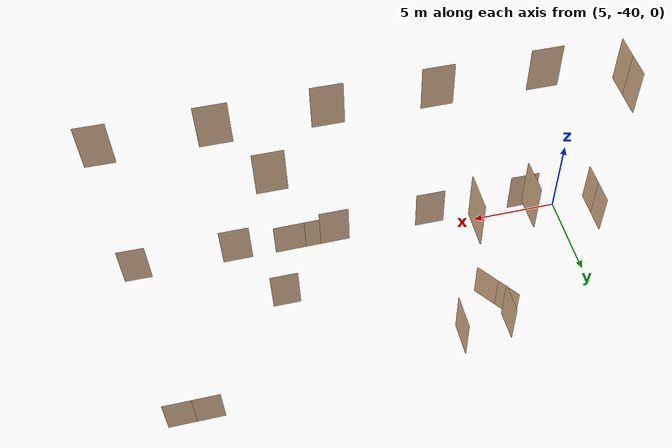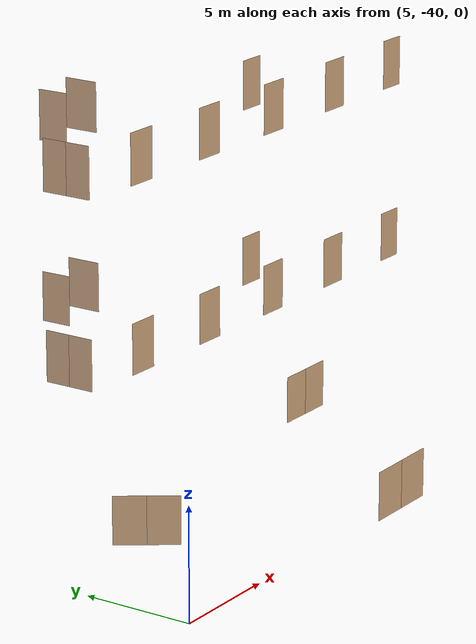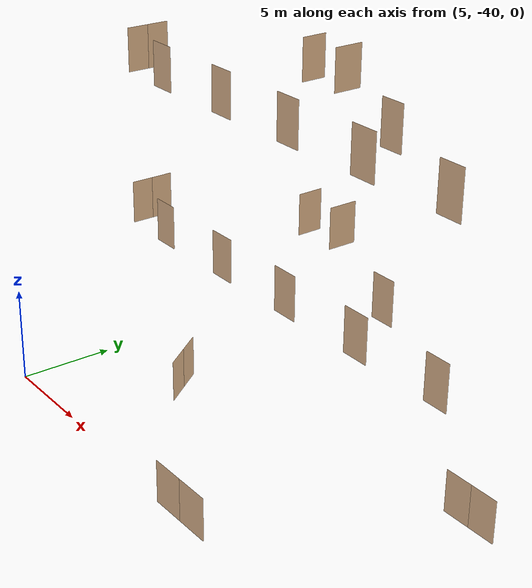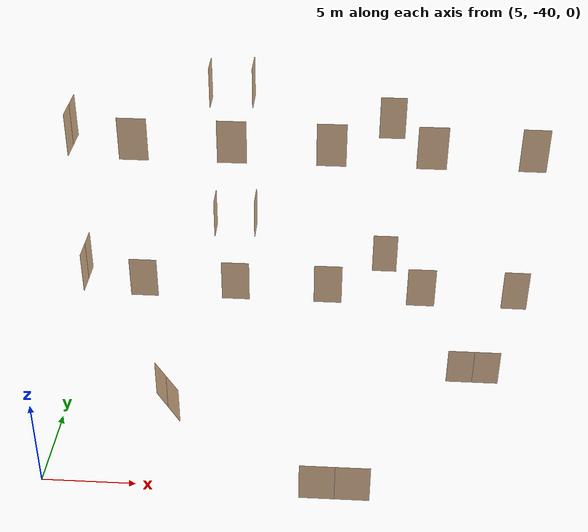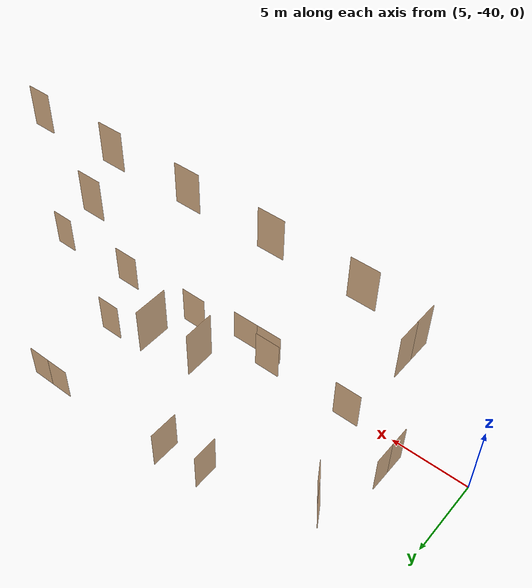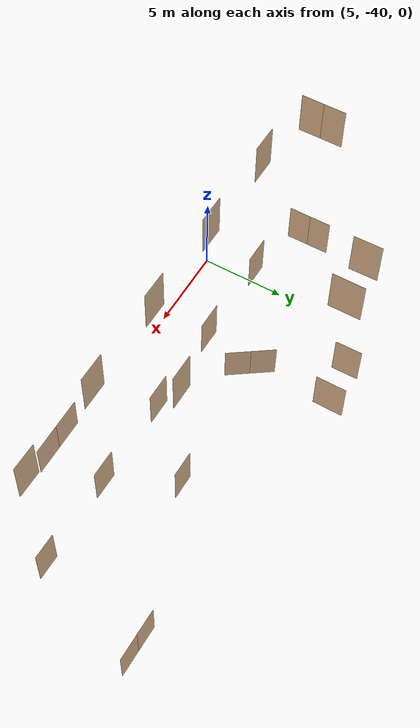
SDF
<sdf version="1.7">
 <world name="world">
  <include><uri>model://sun</uri></include>
  <model name="L1_door1">
   <pose>10.753654762321071 -33.79999264551465 0.0 0 0 2.1904910296829736</pose>
   <link name="right">
    <pose>0.7204413525969184 0 1.11 0 0 0</pose>
    <visual name="right_visual">
     <geometry><box><size>1.4308827051938369 0.03 2.2</size></box></geometry>
     <material><ambient>0.5 0.25 0 0.6</ambient><diffuse>0.5 0.25 0 0.6</diffuse></material>
    </visual>
    <collision name="right_collision">
     <geometry><box><size>1.4308827051938369 0.03 2.2</size></box></geometry>
     <surface><contact><collide_bitmask>0x02</collide_bitmask></contact></surface>
    </collision>
    <inertial>
     <mass>50.0</mass>
     <inertia><ixx>20.17041666666667</ixx><iyy>28.69760548342847</iyy><izz>8.534688816761804</izz></inertia>
    </inertial>
   </link>
   <joint name="right_joint" type="revolute">
    <parent>world</parent>
    <child>right</child>
    <axis><xyz>0 0 1</xyz><limit><lower>0</lower><upper>1.57</upper></limit></axis>
    <pose>0.7204413525969184 0 0 0 0 0</pose>
   </joint>
   <link name="left">
    <pose>-0.7204413525969184 0 1.11 0 0 0</pose>
    <visual name="left_visual">
     <geometry><box><size>1.4308827051938369 0.03 2.2</size></box></geometry>
     <material><ambient>0.5 0.25 0 0.6</ambient><diffuse>0.5 0.25 0 0.6</diffuse></material>
    </visual>
    <collision name="left_collision">
     <geometry><box><size>1.4308827051938369 0.03 2.2</size></box></geometry>
     <surface><contact><collide_bitmask>0x02</collide_bitmask></contact></surface>
    </collision>
    <inertial>
     <mass>50.0</mass>
     <inertia><ixx>20.17041666666667</ixx><iyy>28.69760548342847</iyy><izz>8.534688816761804</izz></inertia>
    </inertial>
   </link>
   <joint name="left_joint" type="revolute">
    <parent>world</parent>
    <child>left</child>
    <axis><xyz>0 0 1</xyz><limit><lower>-1.57</lower><upper>0</upper></limit></axis>
    <pose>-0.7204413525969184 0 0 0 0 0</pose>
   </joint>
  </model>
  <model name="L1_door3">
   <pose>20.334155710474544 -40.40725483879361 0.0 0 0 -3.137402798278724</pose>
   <link name="right">
    <pose>0.9069965354571369 0 1.11 0 0 0</pose>
    <visual name="right_visual">
     <geometry><box><size>1.8039930709142737 0.03 2.2</size></box></geometry>
     <material><ambient>0.5 0.25 0 0.6</ambient><diffuse>0.5 0.25 0 0.6</diffuse></material>
    </visual>
    <collision name="right_collision">
     <geometry><box><size>1.8039930709142737 0.03 2.2</size></box></geometry>
     <surface><contact><collide_bitmask>0x02</collide_bitmask></contact></surface>
    </collision>
    <inertial>
     <mass>50.0</mass>
     <inertia><ixx>20.17041666666667</ixx><iyy>33.726629166277974</iyy><izz>13.563712499611302</izz></inertia>
    </inertial>
   </link>
   <joint name="right_joint" type="prismatic">
    <parent>world</parent>
    <child>right</child>
    <axis>
     <xyz>1 0 0</xyz>
     <limit>
      <lower>0.0</lower>
      <upper>1.4748171583800687</upper>
      <effort>500.0</effort>
      <velocity>0.8</velocity>
     </limit>
     <dynamics damping="60.0" friction="50.0"/>
    </axis>
   </joint>
   <link name="left">
    <pose>-0.9069965354571369 0 1.11 0 0 0</pose>
    <visual name="left_visual">
     <geometry><box><size>1.8039930709142737 0.03 2.2</size></box></geometry>
     <material><ambient>0.5 0.25 0 0.6</ambient><diffuse>0.5 0.25 0 0.6</diffuse></material>
    </visual>
    <collision name="left_collision">
     <geometry><box><size>1.8039930709142737 0.03 2.2</size></box></geometry>
     <surface><contact><collide_bitmask>0x02</collide_bitmask></contact></surface>
    </collision>
    <inertial>
     <mass>50.0</mass>
     <inertia><ixx>20.17041666666667</ixx><iyy>33.726629166277974</iyy><izz>13.563712499611302</izz></inertia>
    </inertial>
   </link>
   <joint name="left_joint" type="prismatic">
    <parent>world</parent>
    <child>left</child>
    <axis>
     <xyz>1 0 0</xyz>
     <limit>
      <lower>-1.4748171583800687</lower>
      <upper>0</upper>
      <effort>500.0</effort>
      <velocity>0.8</velocity>
     </limit>
     <dynamics damping="60.0" friction="50.0"/>
    </axis>
   </joint>
   <plugin name="sliding_door" filename="libsliding_door_plugin.so">
    <ros><namespace>/doors/L1_door3</namespace></ros>
    <right_joint>right_joint</right_joint>
    <left_joint>left_joint</left_joint>
    <open_distance>1.3</open_distance>
    <kp>100.0</kp>
    <kd>120.0</kd>
   </plugin>
  </model>
  <model name="L1_door5">
   <pose>28.079493196697264 -30.43738230505557 0.0 0 0 -0.0023958500301941633</pose>
   <link name="right">
    <pose>0.7494993011996198 0 1.11 0 0 0</pose>
    <visual name="right_visual">
     <geometry><box><size>1.4889986023992396 0.03 2.2</size></box></geometry>
     <material><ambient>0.5 0.25 0 0.6</ambient><diffuse>0.5 0.25 0 0.6</diffuse></material>
    </visual>
    <collision name="right_collision">
     <geometry><box><size>1.4889986023992396 0.03 2.2</size></box></geometry>
     <surface><contact><collide_bitmask>0x02</collide_bitmask></contact></surface>
    </collision>
    <inertial>
     <mass>50.0</mass>
     <inertia><ixx>20.17041666666667</ixx><iyy>29.404653491445373</iyy><izz>9.241736824778705</izz></inertia>
    </inertial>
   </link>
   <joint name="right_joint" type="prismatic">
    <parent>world</parent>
    <child>right</child>
    <axis>
     <xyz>1 0 0</xyz>
     <limit>
      <lower>0.0</lower>
      <upper>1.4748171583800687</upper>
      <effort>500.0</effort>
      <velocity>0.8</velocity>
     </limit>
     <dynamics damping="60.0" friction="50.0"/>
    </axis>
   </joint>
   <link name="left">
    <pose>-0.7494993011996198 0 1.11 0 0 0</pose>
    <visual name="left_visual">
     <geometry><box><size>1.4889986023992396 0.03 2.2</size></box></geometry>
     <material><ambient>0.5 0.25 0 0.6</ambient><diffuse>0.5 0.25 0 0.6</diffuse></material>
    </visual>
    <collision name="left_collision">
     <geometry><box><size>1.4889986023992396 0.03 2.2</size></box></geometry>
     <surface><contact><collide_bitmask>0x02</collide_bitmask></contact></surface>
    </collision>
    <inertial>
     <mass>50.0</mass>
     <inertia><ixx>20.17041666666667</ixx><iyy>29.404653491445373</iyy><izz>9.241736824778705</izz></inertia>
    </inertial>
   </link>
   <joint name="left_joint" type="prismatic">
    <parent>world</parent>
    <child>left</child>
    <axis>
     <xyz>1 0 0</xyz>
     <limit>
      <lower>-1.4748171583800687</lower>
      <upper>0</upper>
      <effort>500.0</effort>
      <velocity>0.8</velocity>
     </limit>
     <dynamics damping="60.0" friction="50.0"/>
    </axis>
   </joint>
   <plugin name="sliding_door" filename="libsliding_door_plugin.so">
    <ros><namespace>/doors/L1_door5</namespace></ros>
    <right_joint>right_joint</right_joint>
    <left_joint>left_joint</left_joint>
    <open_distance>1.3</open_distance>
    <kp>100.0</kp>
    <kd>120.0</kd>
   </plugin>
  </model>
  <model name="L2_door2">
   <pose>6.76857286388343 -32.90682600516501 8.0 0 0 1.571612558028263</pose>
   <link name="right">
    <pose>0.5675078680191911 0 1.11 0 0 0</pose>
    <visual name="right_visual">
     <geometry><box><size>1.1250157360383821 0.03 2.2</size></box></geometry>
     <material><ambient>0.5 0.25 0 0.6</ambient><diffuse>0.5 0.25 0 0.6</diffuse></material>
    </visual>
    <collision name="right_collision">
     <geometry><box><size>1.1250157360383821 0.03 2.2</size></box></geometry>
     <surface><contact><collide_bitmask>0x02</collide_bitmask></contact></surface>
    </collision>
    <inertial>
     <mass>50.0</mass>
     <inertia><ixx>20.17041666666667</ixx><iyy>25.44025169305827</iyy><izz>5.277335026391595</izz></inertia>
    </inertial>
   </link>
   <joint name="right_joint" type="revolute">
    <parent>world</parent>
    <child>right</child>
    <axis><xyz>0 0 -1</xyz><limit><lower>0</lower><upper>1.57</upper></limit></axis>
    <pose>0.5675078680191911 0 0 0 0 0</pose>
   </joint>
   <link name="left">
    <pose>-0.5675078680191911 0 1.11 0 0 0</pose>
    <visual name="left_visual">
     <geometry><box><size>1.1250157360383821 0.03 2.2</size></box></geometry>
     <material><ambient>0.5 0.25 0 0.6</ambient><diffuse>0.5 0.25 0 0.6</diffuse></material>
    </visual>
    <collision name="left_collision">
     <geometry><box><size>1.1250157360383821 0.03 2.2</size></box></geometry>
     <surface><contact><collide_bitmask>0x02</collide_bitmask></contact></surface>
    </collision>
    <inertial>
     <mass>50.0</mass>
     <inertia><ixx>20.17041666666667</ixx><iyy>25.44025169305827</iyy><izz>5.277335026391595</izz></inertia>
    </inertial>
   </link>
   <joint name="left_joint" type="revolute">
    <parent>world</parent>
    <child>left</child>
    <axis><xyz>0 0 -1</xyz><limit><lower>-1.57</lower><upper>0</upper></limit></axis>
    <pose>-0.5675078680191911 0 0 0 0 0</pose>
   </joint>
  </model>
  <model name="L2_door3">
   <pose>10.044220258 -34.21478433126707 8.0 0 0 3.1365461417546308</pose>
   <link name="right">
    <pose>0 0 1.11 0 0 0</pose>
    <visual name="right_visual">
     <geometry><box><size>1.4278667928054123 0.03 2.2</size></box></geometry>
     <material><ambient>0.5 0.25 0 0.6</ambient><diffuse>0.5 0.25 0 0.6</diffuse></material>
    </visual>
    <collision name="right_collision">
     <geometry><box><size>1.4278667928054123 0.03 2.2</size></box></geometry>
     <surface><contact><collide_bitmask>0x02</collide_bitmask></contact></surface>
    </collision>
    <inertial>
     <mass>50.0</mass>
     <inertia><ixx>20.17041666666667</ixx><iyy>28.661681574985064</iyy><izz>8.498764908318392</izz></inertia>
    </inertial>
   </link>
   <joint name="right_joint" type="revolute">
    <parent>world</parent>
    <child>right</child>
    <axis><xyz>0 0 -1</xyz><limit><lower>0</lower><upper>1.57</upper></limit></axis>
    <pose>0.7189333964027061 0 0 0 0 0</pose>
   </joint>
  </model>
  <model name="L2_door4">
   <pose>19.62055855578882 -34.21478433126707 8.0 0 0 3.1365461417546308</pose>
   <link name="right">
    <pose>0 0 1.11 0 0 0</pose>
    <visual name="right_visual">
     <geometry><box><size>1.4278667928054123 0.03 2.2</size></box></geometry>
     <material><ambient>0.5 0.25 0 0.6</ambient><diffuse>0.5 0.25 0 0.6</diffuse></material>
    </visual>
    <collision name="right_collision">
     <geometry><box><size>1.4278667928054123 0.03 2.2</size></box></geometry>
     <surface><contact><collide_bitmask>0x02</collide_bitmask></contact></surface>
    </collision>
    <inertial>
     <mass>50.0</mass>
     <inertia><ixx>20.17041666666667</ixx><iyy>28.661681574985064</iyy><izz>8.498764908318392</izz></inertia>
    </inertial>
   </link>
   <joint name="right_joint" type="revolute">
    <parent>world</parent>
    <child>right</child>
    <axis><xyz>0 0 -1</xyz><limit><lower>0</lower><upper>1.57</upper></limit></axis>
    <pose>0.7189333964027061 0 0 0 0 0</pose>
   </joint>
  </model>
  <model name="L2_door5">
   <pose>14.832389407 -34.21478433126707 8.0 0 0 3.1365461417546308</pose>
   <link name="right">
    <pose>0 0 1.11 0 0 0</pose>
    <visual name="right_visual">
     <geometry><box><size>1.4278667928054123 0.03 2.2</size></box></geometry>
     <material><ambient>0.5 0.25 0 0.6</ambient><diffuse>0.5 0.25 0 0.6</diffuse></material>
    </visual>
    <collision name="right_collision">
     <geometry><box><size>1.4278667928054123 0.03 2.2</size></box></geometry>
     <surface><contact><collide_bitmask>0x02</collide_bitmask></contact></surface>
    </collision>
    <inertial>
     <mass>50.0</mass>
     <inertia><ixx>20.17041666666667</ixx><iyy>28.661681574985064</iyy><izz>8.498764908318392</izz></inertia>
    </inertial>
   </link>
   <joint name="right_joint" type="revolute">
    <parent>world</parent>
    <child>right</child>
    <axis><xyz>0 0 -1</xyz><limit><lower>0</lower><upper>1.57</upper></limit></axis>
    <pose>0.7189333964027061 0 0 0 0 0</pose>
   </joint>
  </model>
  <model name="L2_door6">
   <pose>24.408727706 -34.21478433126707 8.0 0 0 3.1365461417546308</pose>
   <link name="right">
    <pose>0 0 1.11 0 0 0</pose>
    <visual name="right_visual">
     <geometry><box><size>1.4278667928054123 0.03 2.2</size></box></geometry>
     <material><ambient>0.5 0.25 0 0.6</ambient><diffuse>0.5 0.25 0 0.6</diffuse></material>
    </visual>
    <collision name="right_collision">
     <geometry><box><size>1.4278667928054123 0.03 2.2</size></box></geometry>
     <surface><contact><collide_bitmask>0x02</collide_bitmask></contact></surface>
    </collision>
    <inertial>
     <mass>50.0</mass>
     <inertia><ixx>20.17041666666667</ixx><iyy>28.661681574985064</iyy><izz>8.498764908318392</izz></inertia>
    </inertial>
   </link>
   <joint name="right_joint" type="revolute">
    <parent>world</parent>
    <child>right</child>
    <axis><xyz>0 0 -1</xyz><limit><lower>0</lower><upper>1.57</upper></limit></axis>
    <pose>0.7189333964027061 0 0 0 0 0</pose>
   </joint>
  </model>
  <model name="L2_door7">
   <pose>13.018848337594756 -27.49809116 8.0 0 0 1.5874688733681936</pose>
   <link name="right">
    <pose>0 0 1.11 0 0 0</pose>
    <visual name="right_visual">
     <geometry><box><size>1.382945881897145 0.03 2.2</size></box></geometry>
     <material><ambient>0.5 0.25 0 0.6</ambient><diffuse>0.5 0.25 0 0.6</diffuse></material>
    </visual>
    <collision name="right_collision">
     <geometry><box><size>1.382945881897145 0.03 2.2</size></box></geometry>
     <surface><contact><collide_bitmask>0x02</collide_bitmask></contact></surface>
    </collision>
    <inertial>
     <mass>50.0</mass>
     <inertia><ixx>20.17041666666667</ixx><iyy>28.13558046773447</iyy><izz>7.9726638010677995</izz></inertia>
    </inertial>
   </link>
   <joint name="right_joint" type="revolute">
    <parent>world</parent>
    <child>right</child>
    <axis><xyz>0 0 -1</xyz><limit><lower>0</lower><upper>1.57</upper></limit></axis>
    <pose>0.6964729409485725 0 0 0 0 0</pose>
   </joint>
  </model>
  <model name="L2_door12">
   <pose>15.28470442617677 -27.2761317707633 8.0 0 0 1.571612558028262</pose>
   <link name="right">
    <pose>0 0 1.11 0 0 0</pose>
    <visual name="right_visual">
     <geometry><box><size>1.5658659299508506 0.03 2.2</size></box></geometry>
     <material><ambient>0.5 0.25 0 0.6</ambient><diffuse>0.5 0.25 0 0.6</diffuse></material>
    </visual>
    <collision name="right_collision">
     <geometry><box><size>1.5658659299508506 0.03 2.2</size></box></geometry>
     <surface><contact><collide_bitmask>0x02</collide_bitmask></contact></surface>
    </collision>
    <inertial>
     <mass>50.0</mass>
     <inertia><ixx>20.17041666666667</ixx><iyy>30.38306712742018</iyy><izz>10.22015046075351</izz></inertia>
    </inertial>
   </link>
   <joint name="right_joint" type="revolute">
    <parent>world</parent>
    <child>right</child>
    <axis><xyz>0 0 1</xyz><limit><lower>0</lower><upper>1.57</upper></limit></axis>
    <pose>0.7879329649754253 0 0 0 0 0</pose>
   </joint>
  </model>
  <model name="L2_door14">
   <pose>22.582882547846204 -31.092638612981972 8.0 0 0 3.137779488569298</pose>
   <link name="right">
    <pose>0 0 1.11 0 0 0</pose>
    <visual name="right_visual">
     <geometry><box><size>1.2889329745237348 0.03 2.2</size></box></geometry>
     <material><ambient>0.5 0.25 0 0.6</ambient><diffuse>0.5 0.25 0 0.6</diffuse></material>
    </visual>
    <collision name="right_collision">
     <geometry><box><size>1.2889329745237348 0.03 2.2</size></box></geometry>
     <surface><contact><collide_bitmask>0x02</collide_bitmask></contact></surface>
    </collision>
    <inertial>
     <mass>50.0</mass>
     <inertia><ixx>20.17041666666667</ixx><iyy>27.088950886727517</iyy><izz>6.926034220060845</izz></inertia>
    </inertial>
   </link>
   <joint name="right_joint" type="revolute">
    <parent>world</parent>
    <child>right</child>
    <axis><xyz>0 0 1</xyz><limit><lower>0</lower><upper>1.57</upper></limit></axis>
    <pose>0.6494664872618674 0 0 0 0 0</pose>
   </joint>
  </model>
  <model name="L2_door15">
   <pose>29.19689685453295 -34.1844883615378 8.0 0 0 3.1287318603676484</pose>
   <link name="right">
    <pose>0 0 1.11 0 0 0</pose>
    <visual name="right_visual">
     <geometry><box><size>1.2884785147293154 0.03 2.2</size></box></geometry>
     <material><ambient>0.5 0.25 0 0.6</ambient><diffuse>0.5 0.25 0 0.6</diffuse></material>
    </visual>
    <collision name="right_collision">
     <geometry><box><size>1.2884785147293154 0.03 2.2</size></box></geometry>
     <surface><contact><collide_bitmask>0x02</collide_bitmask></contact></surface>
    </collision>
    <inertial>
     <mass>50.0</mass>
     <inertia><ixx>20.17041666666667</ixx><iyy>27.0840703454961</iyy><izz>6.921153678829428</izz></inertia>
    </inertial>
   </link>
   <joint name="right_joint" type="revolute">
    <parent>world</parent>
    <child>right</child>
    <axis><xyz>0 0 -1</xyz><limit><lower>0</lower><upper>1.57</upper></limit></axis>
    <pose>0.6492392573646577 0 0 0 0 0</pose>
   </joint>
  </model>
  <model name="L3_door2">
   <pose>6.76857286388343 -32.90682600516501 16.0 0 0 1.571612558028263</pose>
   <link name="right">
    <pose>0.5675078680191911 0 1.11 0 0 0</pose>
    <visual name="right_visual">
     <geometry><box><size>1.1250157360383821 0.03 2.2</size></box></geometry>
     <material><ambient>0.5 0.25 0 0.6</ambient><diffuse>0.5 0.25 0 0.6</diffuse></material>
    </visual>
    <collision name="right_collision">
     <geometry><box><size>1.1250157360383821 0.03 2.2</size></box></geometry>
     <surface><contact><collide_bitmask>0x02</collide_bitmask></contact></surface>
    </collision>
    <inertial>
     <mass>50.0</mass>
     <inertia><ixx>20.17041666666667</ixx><iyy>25.44025169305827</iyy><izz>5.277335026391595</izz></inertia>
    </inertial>
   </link>
   <joint name="right_joint" type="revolute">
    <parent>world</parent>
    <child>right</child>
    <axis><xyz>0 0 -1</xyz><limit><lower>0</lower><upper>1.57</upper></limit></axis>
    <pose>0.5675078680191911 0 0 0 0 0</pose>
   </joint>
   <link name="left">
    <pose>-0.5675078680191911 0 1.11 0 0 0</pose>
    <visual name="left_visual">
     <geometry><box><size>1.1250157360383821 0.03 2.2</size></box></geometry>
     <material><ambient>0.5 0.25 0 0.6</ambient><diffuse>0.5 0.25 0 0.6</diffuse></material>
    </visual>
    <collision name="left_collision">
     <geometry><box><size>1.1250157360383821 0.03 2.2</size></box></geometry>
     <surface><contact><collide_bitmask>0x02</collide_bitmask></contact></surface>
    </collision>
    <inertial>
     <mass>50.0</mass>
     <inertia><ixx>20.17041666666667</ixx><iyy>25.44025169305827</iyy><izz>5.277335026391595</izz></inertia>
    </inertial>
   </link>
   <joint name="left_joint" type="revolute">
    <parent>world</parent>
    <child>left</child>
    <axis><xyz>0 0 -1</xyz><limit><lower>-1.57</lower><upper>0</upper></limit></axis>
    <pose>-0.5675078680191911 0 0 0 0 0</pose>
   </joint>
  </model>
  <model name="L3_door3">
   <pose>10.044220258 -34.21478433126707 16.0 0 0 3.1365461417546308</pose>
   <link name="right">
    <pose>0 0 1.11 0 0 0</pose>
    <visual name="right_visual">
     <geometry><box><size>1.4278667928054123 0.03 2.2</size></box></geometry>
     <material><ambient>0.5 0.25 0 0.6</ambient><diffuse>0.5 0.25 0 0.6</diffuse></material>
    </visual>
    <collision name="right_collision">
     <geometry><box><size>1.4278667928054123 0.03 2.2</size></box></geometry>
     <surface><contact><collide_bitmask>0x02</collide_bitmask></contact></surface>
    </collision>
    <inertial>
     <mass>50.0</mass>
     <inertia><ixx>20.17041666666667</ixx><iyy>28.661681574985064</iyy><izz>8.498764908318392</izz></inertia>
    </inertial>
   </link>
   <joint name="right_joint" type="revolute">
    <parent>world</parent>
    <child>right</child>
    <axis><xyz>0 0 -1</xyz><limit><lower>0</lower><upper>1.57</upper></limit></axis>
    <pose>0.7189333964027061 0 0 0 0 0</pose>
   </joint>
  </model>
  <model name="L3_door4">
   <pose>19.62055855578882 -34.21478433126707 16.0 0 0 3.1365461417546308</pose>
   <link name="right">
    <pose>0 0 1.11 0 0 0</pose>
    <visual name="right_visual">
     <geometry><box><size>1.4278667928054123 0.03 2.2</size></box></geometry>
     <material><ambient>0.5 0.25 0 0.6</ambient><diffuse>0.5 0.25 0 0.6</diffuse></material>
    </visual>
    <collision name="right_collision">
     <geometry><box><size>1.4278667928054123 0.03 2.2</size></box></geometry>
     <surface><contact><collide_bitmask>0x02</collide_bitmask></contact></surface>
    </collision>
    <inertial>
     <mass>50.0</mass>
     <inertia><ixx>20.17041666666667</ixx><iyy>28.661681574985064</iyy><izz>8.498764908318392</izz></inertia>
    </inertial>
   </link>
   <joint name="right_joint" type="revolute">
    <parent>world</parent>
    <child>right</child>
    <axis><xyz>0 0 -1</xyz><limit><lower>0</lower><upper>1.57</upper></limit></axis>
    <pose>0.7189333964027061 0 0 0 0 0</pose>
   </joint>
  </model>
  <model name="L3_door5">
   <pose>14.832389407 -34.21478433126707 16.0 0 0 3.1365461417546308</pose>
   <link name="right">
    <pose>0 0 1.11 0 0 0</pose>
    <visual name="right_visual">
     <geometry><box><size>1.4278667928054123 0.03 2.2</size></box></geometry>
     <material><ambient>0.5 0.25 0 0.6</ambient><diffuse>0.5 0.25 0 0.6</diffuse></material>
    </visual>
    <collision name="right_collision">
     <geometry><box><size>1.4278667928054123 0.03 2.2</size></box></geometry>
     <surface><contact><collide_bitmask>0x02</collide_bitmask></contact></surface>
    </collision>
    <inertial>
     <mass>50.0</mass>
     <inertia><ixx>20.17041666666667</ixx><iyy>28.661681574985064</iyy><izz>8.498764908318392</izz></inertia>
    </inertial>
   </link>
   <joint name="right_joint" type="revolute">
    <parent>world</parent>
    <child>right</child>
    <axis><xyz>0 0 -1</xyz><limit><lower>0</lower><upper>1.57</upper></limit></axis>
    <pose>0.7189333964027061 0 0 0 0 0</pose>
   </joint>
  </model>
  <model name="L3_door6">
   <pose>24.408727706 -34.21478433126707 16.0 0 0 3.1365461417546308</pose>
   <link name="right">
    <pose>0 0 1.11 0 0 0</pose>
    <visual name="right_visual">
     <geometry><box><size>1.4278667928054123 0.03 2.2</size></box></geometry>
     <material><ambient>0.5 0.25 0 0.6</ambient><diffuse>0.5 0.25 0 0.6</diffuse></material>
    </visual>
    <collision name="right_collision">
     <geometry><box><size>1.4278667928054123 0.03 2.2</size></box></geometry>
     <surface><contact><collide_bitmask>0x02</collide_bitmask></contact></surface>
    </collision>
    <inertial>
     <mass>50.0</mass>
     <inertia><ixx>20.17041666666667</ixx><iyy>28.661681574985064</iyy><izz>8.498764908318392</izz></inertia>
    </inertial>
   </link>
   <joint name="right_joint" type="revolute">
    <parent>world</parent>
    <child>right</child>
    <axis><xyz>0 0 -1</xyz><limit><lower>0</lower><upper>1.57</upper></limit></axis>
    <pose>0.7189333964027061 0 0 0 0 0</pose>
   </joint>
  </model>
  <model name="L3_door7">
   <pose>13.018848337594756 -27.49809116 16.0 0 0 1.5874688733681936</pose>
   <link name="right">
    <pose>0 0 1.11 0 0 0</pose>
    <visual name="right_visual">
     <geometry><box><size>1.382945881897145 0.03 2.2</size></box></geometry>
     <material><ambient>0.5 0.25 0 0.6</ambient><diffuse>0.5 0.25 0 0.6</diffuse></material>
    </visual>
    <collision name="right_collision">
     <geometry><box><size>1.382945881897145 0.03 2.2</size></box></geometry>
     <surface><contact><collide_bitmask>0x02</collide_bitmask></contact></surface>
    </collision>
    <inertial>
     <mass>50.0</mass>
     <inertia><ixx>20.17041666666667</ixx><iyy>28.13558046773447</iyy><izz>7.9726638010677995</izz></inertia>
    </inertial>
   </link>
   <joint name="right_joint" type="revolute">
    <parent>world</parent>
    <child>right</child>
    <axis><xyz>0 0 -1</xyz><limit><lower>0</lower><upper>1.57</upper></limit></axis>
    <pose>0.6964729409485725 0 0 0 0 0</pose>
   </joint>
  </model>
  <model name="L3_door12">
   <pose>15.28470442617677 -27.2761317707633 16.0 0 0 1.571612558028262</pose>
   <link name="right">
    <pose>0 0 1.11 0 0 0</pose>
    <visual name="right_visual">
     <geometry><box><size>1.5658659299508506 0.03 2.2</size></box></geometry>
     <material><ambient>0.5 0.25 0 0.6</ambient><diffuse>0.5 0.25 0 0.6</diffuse></material>
    </visual>
    <collision name="right_collision">
     <geometry><box><size>1.5658659299508506 0.03 2.2</size></box></geometry>
     <surface><contact><collide_bitmask>0x02</collide_bitmask></contact></surface>
    </collision>
    <inertial>
     <mass>50.0</mass>
     <inertia><ixx>20.17041666666667</ixx><iyy>30.38306712742018</iyy><izz>10.22015046075351</izz></inertia>
    </inertial>
   </link>
   <joint name="right_joint" type="revolute">
    <parent>world</parent>
    <child>right</child>
    <axis><xyz>0 0 1</xyz><limit><lower>0</lower><upper>1.57</upper></limit></axis>
    <pose>0.7879329649754253 0 0 0 0 0</pose>
   </joint>
  </model>
  <model name="L3_door14">
   <pose>22.582882547846204 -31.092638612981972 16.0 0 0 3.137779488569298</pose>
   <link name="right">
    <pose>0 0 1.11 0 0 0</pose>
    <visual name="right_visual">
     <geometry><box><size>1.2889329745237348 0.03 2.2</size></box></geometry>
     <material><ambient>0.5 0.25 0 0.6</ambient><diffuse>0.5 0.25 0 0.6</diffuse></material>
    </visual>
    <collision name="right_collision">
     <geometry><box><size>1.2889329745237348 0.03 2.2</size></box></geometry>
     <surface><contact><collide_bitmask>0x02</collide_bitmask></contact></surface>
    </collision>
    <inertial>
     <mass>50.0</mass>
     <inertia><ixx>20.17041666666667</ixx><iyy>27.088950886727517</iyy><izz>6.926034220060845</izz></inertia>
    </inertial>
   </link>
   <joint name="right_joint" type="revolute">
    <parent>world</parent>
    <child>right</child>
    <axis><xyz>0 0 1</xyz><limit><lower>0</lower><upper>1.57</upper></limit></axis>
    <pose>0.6494664872618674 0 0 0 0 0</pose>
   </joint>
  </model>
  <model name="L3_door15">
   <pose>29.19689685453295 -34.1844883615378 16.0 0 0 3.1287318603676484</pose>
   <link name="right">
    <pose>0 0 1.11 0 0 0</pose>
    <visual name="right_visual">
     <geometry><box><size>1.2884785147293154 0.03 2.2</size></box></geometry>
     <material><ambient>0.5 0.25 0 0.6</ambient><diffuse>0.5 0.25 0 0.6</diffuse></material>
    </visual>
    <collision name="right_collision">
     <geometry><box><size>1.2884785147293154 0.03 2.2</size></box></geometry>
     <surface><contact><collide_bitmask>0x02</collide_bitmask></contact></surface>
    </collision>
    <inertial>
     <mass>50.0</mass>
     <inertia><ixx>20.17041666666667</ixx><iyy>27.0840703454961</iyy><izz>6.921153678829428</izz></inertia>
    </inertial>
   </link>
   <joint name="right_joint" type="revolute">
    <parent>world</parent>
    <child>right</child>
    <axis><xyz>0 0 -1</xyz><limit><lower>0</lower><upper>1.57</upper></limit></axis>
    <pose>0.6492392573646577 0 0 0 0 0</pose>
   </joint>
  </model>
 </world>
</sdf>
